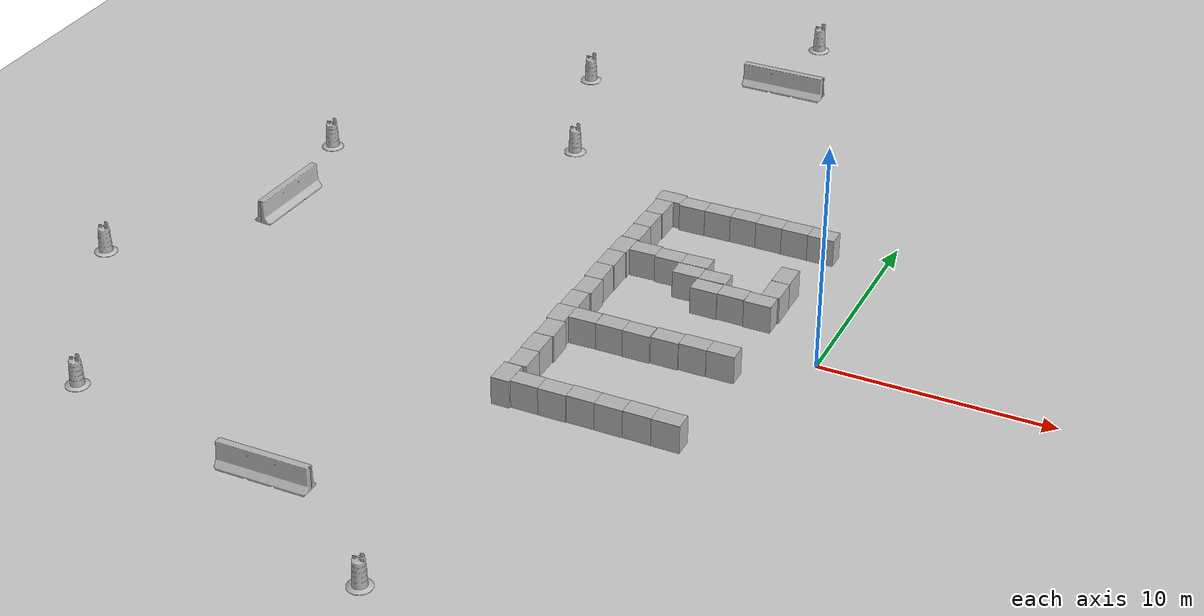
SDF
<sdf version="1.7">
 <world name="default">
  <model name="ground_plane">
   <static>1</static>
   <link name="link">
    <collision name="collision">
     <geometry><plane><normal>0 0 1</normal><size>100 100</size></plane></geometry>
     <surface><friction><ode><mu>100</mu><mu2>50</mu2></ode></friction></surface>
    </collision>
    <visual name="visual">
     <cast_shadows>0</cast_shadows>
     <geometry><plane><normal>0 0 1</normal><size>100 100</size></plane></geometry>
     <material>
      <script><uri>file://media/materials/scripts/gazebo.material</uri><name>Gazebo/Grey</name></script>
     </material>
    </visual>
    <velocity_decay><linear>0</linear><angular>0</angular></velocity_decay>
   </link>
  </model>
  <model name="Construction Barrel_2">
   <link name="link">
    <inertial>
     <pose>0 0 0.4 0 -0 0</pose>
     <mass>500</mass>
     <inertia><ixx>51.2096</ixx><iyy>51.2096</iyy><izz>25</izz><ixy>0</ixy><ixz>0</ixz><iyz>0</iyz></inertia>
    </inertial>
    <collision name="collision">
     <geometry><mesh><uri>model://construction_barrel/meshes/construction_barrel.dae</uri></mesh></geometry>
    </collision>
    <visual name="visual">
     <geometry><mesh><uri>model://construction_barrel/meshes/construction_barrel.dae</uri></mesh></geometry>
    </visual>
    <velocity_decay><linear>0</linear><angular>0</angular></velocity_decay>
   </link>
   <pose>-16.5173 12.0056 0 0 0 -0.002074</pose>
   <static>0</static>
  </model>
  <model name="Construction Barrel_5">
   <link name="link">
    <inertial>
     <pose>0 0 0.4 0 -0 0</pose>
     <mass>500</mass>
     <inertia><ixx>51.2096</ixx><iyy>51.2096</iyy><izz>25</izz><ixy>0</ixy><ixz>0</ixz><iyz>0</iyz></inertia>
    </inertial>
    <collision name="collision">
     <geometry><mesh><uri>model://construction_barrel/meshes/construction_barrel.dae</uri></mesh></geometry>
    </collision>
    <visual name="visual">
     <geometry><mesh><uri>model://construction_barrel/meshes/construction_barrel.dae</uri></mesh></geometry>
    </visual>
    <velocity_decay><linear>0</linear><angular>0</angular></velocity_decay>
   </link>
   <pose>-27.0002 7.54608 0 0 0 -0.001826</pose>
   <static>0</static>
  </model>
  <model name="Construction Barrel_6">
   <link name="link">
    <inertial>
     <pose>0 0 0.4 0 -0 0</pose>
     <mass>500</mass>
     <inertia><ixx>51.2096</ixx><iyy>51.2096</iyy><izz>25</izz><ixy>0</ixy><ixz>0</ixz><iyz>0</iyz></inertia>
    </inertial>
    <collision name="collision">
     <geometry><mesh><uri>model://construction_barrel/meshes/construction_barrel.dae</uri></mesh></geometry>
    </collision>
    <visual name="visual">
     <geometry><mesh><uri>model://construction_barrel/meshes/construction_barrel.dae</uri></mesh></geometry>
    </visual>
    <velocity_decay><linear>0</linear><angular>0</angular></velocity_decay>
   </link>
   <pose>-10.0002 27.0007 0 0 0 -0.00183</pose>
   <static>0</static>
  </model>
  <model name="Construction Barrel_7">
   <link name="link">
    <inertial>
     <pose>0 0 0.4 0 -0 0</pose>
     <mass>500</mass>
     <inertia><ixx>51.2096</ixx><iyy>51.2096</iyy><izz>25</izz><ixy>0</ixy><ixz>0</ixz><iyz>0</iyz></inertia>
    </inertial>
    <collision name="collision">
     <geometry><mesh><uri>model://construction_barrel/meshes/construction_barrel.dae</uri></mesh></geometry>
    </collision>
    <visual name="visual">
     <geometry><mesh><uri>model://construction_barrel/meshes/construction_barrel.dae</uri></mesh></geometry>
    </visual>
    <velocity_decay><linear>0</linear><angular>0</angular></velocity_decay>
   </link>
   <pose>-31.0002 -4.99928 0 0 0 -0.001746</pose>
   <static>0</static>
  </model>
  <model name="Construction Barrel_8">
   <link name="link">
    <inertial>
     <pose>0 0 0.4 0 -0 0</pose>
     <mass>500</mass>
     <inertia><ixx>51.2096</ixx><iyy>51.2096</iyy><izz>25</izz><ixy>0</ixy><ixz>0</ixz><iyz>0</iyz></inertia>
    </inertial>
    <collision name="collision">
     <geometry><mesh><uri>model://construction_barrel/meshes/construction_barrel.dae</uri></mesh></geometry>
    </collision>
    <visual name="visual">
     <geometry><mesh><uri>model://construction_barrel/meshes/construction_barrel.dae</uri></mesh></geometry>
    </visual>
    <velocity_decay><linear>0</linear><angular>0</angular></velocity_decay>
   </link>
   <pose>-9.56833 -19.9993 0 0 0 -0.001691</pose>
   <static>0</static>
  </model>
  <model name="Construction Barrel_9">
   <link name="link">
    <inertial>
     <pose>0 0 0.4 0 -0 0</pose>
     <mass>500</mass>
     <inertia><ixx>51.2096</ixx><iyy>51.2096</iyy><izz>25</izz><ixy>0</ixy><ixz>0</ixz><iyz>0</iyz></inertia>
    </inertial>
    <collision name="collision">
     <geometry><mesh><uri>model://construction_barrel/meshes/construction_barrel.dae</uri></mesh></geometry>
    </collision>
    <visual name="visual">
     <geometry><mesh><uri>model://construction_barrel/meshes/construction_barrel.dae</uri></mesh></geometry>
    </visual>
    <velocity_decay><linear>0</linear><angular>0</angular></velocity_decay>
   </link>
   <pose>-26.0003 -13.9994 0 0 0 -0.001597</pose>
   <static>0</static>
  </model>
  <model name="Construction Barrel_14">
   <link name="link">
    <inertial>
     <pose>0 0 0.4 0 -0 0</pose>
     <mass>500</mass>
     <inertia><ixx>51.2096</ixx><iyy>51.2096</iyy><izz>25</izz><ixy>0</ixy><ixz>0</ixz><iyz>0</iyz></inertia>
    </inertial>
    <collision name="collision">
     <geometry><mesh><uri>model://construction_barrel/meshes/construction_barrel.dae</uri></mesh></geometry>
    </collision>
    <visual name="visual">
     <geometry><mesh><uri>model://construction_barrel/meshes/construction_barrel.dae</uri></mesh></geometry>
    </visual>
    <velocity_decay><linear>0</linear><angular>0</angular></velocity_decay>
   </link>
   <pose>-19.0002 19.0004 -1e-06 0 5e-06 -0.001311</pose>
   <static>0</static>
  </model>
  <model name="jersey_barrier_0">
   <static>1</static>
   <link name="link">
    <visual name="visual">
     <geometry><mesh><uri>model://jersey_barrier/meshes/jersey_barrier.dae</uri></mesh></geometry>
    </visual>
    <collision name="upright">
     <pose>0 0 0.5715 0 -0 0</pose>
     <geometry><box><size>4.06542 0.3063 1.143</size></box></geometry>
    </collision>
    <collision name="base">
     <pose>0 0 0.032258 0 -0 0</pose>
     <geometry><box><size>4.06542 0.8107 0.064516</size></box></geometry>
    </collision>
    <collision name="base2">
     <pose>0 0 0.1 0 -0 0</pose>
     <geometry><box><size>4.06542 0.65 0.1</size></box></geometry>
    </collision>
    <collision name="base3">
     <pose>0 0 0.2 0 -0 0</pose>
     <geometry><box><size>4.06542 0.5 0.1</size></box></geometry>
    </collision>
    <collision name="left-angle">
     <pose>0 -0.224 0.2401 0.9 -0 0</pose>
     <geometry><box><size>4.06542 0.5 0.064516</size></box></geometry>
    </collision>
    <collision name="right-angle">
     <pose>0 0.224 0.2401 -0.9 0 0</pose>
     <geometry><box><size>4.06542 0.5 0.064516</size></box></geometry>
    </collision>
    <velocity_decay><linear>0</linear><angular>0</angular></velocity_decay>
   </link>
   <pose>-10 22 0 0 -0 0</pose>
  </model>
  <model name="jersey_barrier_1">
   <static>1</static>
   <link name="link">
    <visual name="visual">
     <geometry><mesh><uri>model://jersey_barrier/meshes/jersey_barrier.dae</uri></mesh></geometry>
    </visual>
    <collision name="upright">
     <pose>0 0 0.5715 0 -0 0</pose>
     <geometry><box><size>4.06542 0.3063 1.143</size></box></geometry>
    </collision>
    <collision name="base">
     <pose>0 0 0.032258 0 -0 0</pose>
     <geometry><box><size>4.06542 0.8107 0.064516</size></box></geometry>
    </collision>
    <collision name="base2">
     <pose>0 0 0.1 0 -0 0</pose>
     <geometry><box><size>4.06542 0.65 0.1</size></box></geometry>
    </collision>
    <collision name="base3">
     <pose>0 0 0.2 0 -0 0</pose>
     <geometry><box><size>4.06542 0.5 0.1</size></box></geometry>
    </collision>
    <collision name="left-angle">
     <pose>0 -0.224 0.2401 0.9 -0 0</pose>
     <geometry><box><size>4.06542 0.5 0.064516</size></box></geometry>
    </collision>
    <collision name="right-angle">
     <pose>0 0.224 0.2401 -0.9 0 0</pose>
     <geometry><box><size>4.06542 0.5 0.064516</size></box></geometry>
    </collision>
    <velocity_decay><linear>0</linear><angular>0</angular></velocity_decay>
   </link>
   <pose>-26 2 0 0 -0 1.49459</pose>
  </model>
  <model name="jersey_barrier_2">
   <static>1</static>
   <link name="link">
    <visual name="visual">
     <geometry><mesh><uri>model://jersey_barrier/meshes/jersey_barrier.dae</uri></mesh></geometry>
    </visual>
    <collision name="upright">
     <pose>0 0 0.5715 0 -0 0</pose>
     <geometry><box><size>4.06542 0.3063 1.143</size></box></geometry>
    </collision>
    <collision name="base">
     <pose>0 0 0.032258 0 -0 0</pose>
     <geometry><box><size>4.06542 0.8107 0.064516</size></box></geometry>
    </collision>
    <collision name="base2">
     <pose>0 0 0.1 0 -0 0</pose>
     <geometry><box><size>4.06542 0.65 0.1</size></box></geometry>
    </collision>
    <collision name="base3">
     <pose>0 0 0.2 0 -0 0</pose>
     <geometry><box><size>4.06542 0.5 0.1</size></box></geometry>
    </collision>
    <collision name="left-angle">
     <pose>0 -0.224 0.2401 0.9 -0 0</pose>
     <geometry><box><size>4.06542 0.5 0.064516</size></box></geometry>
    </collision>
    <collision name="right-angle">
     <pose>0 0.224 0.2401 -0.9 0 0</pose>
     <geometry><box><size>4.06542 0.5 0.064516</size></box></geometry>
    </collision>
    <velocity_decay><linear>0</linear><angular>0</angular></velocity_decay>
   </link>
   <pose>-16 -16 0 0 -0 0</pose>
  </model>
  <model name="Big box 4_clone_6">
   <pose>-3.19129 -7.44955 0.624831 1e-06 -0.000282 -0.000412</pose>
   <static>0</static>
   <link name="link">
    <inertial>
     <mass>40</mass>
     <inertia><ixx>1</ixx><ixy>0</ixy><ixz>0</ixz><iyy>1</iyy><iyz>0</iyz><izz>1</izz></inertia>
    </inertial>
    <collision name="collision">
     <geometry><box><size>1.2 0.8 1.25</size></box></geometry>
     <surface><contact><ode><max_vel>0.1</max_vel><min_depth>0.001</min_depth></ode></contact></surface>
    </collision>
    <visual name="visual">
     <geometry><mesh><uri>model://big_box4/meshes/big_box.dae</uri></mesh></geometry>
    </visual>
   </link>
  </model>
  <model name="Big box 4_clone_6_clone_7">
   <pose>-2.69374 7.94531 0.624498 0 -0.000816 0.005275</pose>
   <static>0</static>
   <link name="link">
    <inertial>
     <mass>40</mass>
     <inertia><ixx>1</ixx><ixy>0</ixy><ixz>0</ixz><iyy>1</iyy><iyz>0</iyz><izz>1</izz></inertia>
    </inertial>
    <collision name="collision">
     <geometry><box><size>1.2 0.8 1.25</size></box></geometry>
     <surface><contact><ode><max_vel>0.1</max_vel><min_depth>0.001</min_depth></ode></contact></surface>
    </collision>
    <visual name="visual">
     <geometry><mesh><uri>model://big_box4/meshes/big_box.dae</uri></mesh></geometry>
    </visual>
   </link>
  </model>
  <model name="Big box 4_clone_6_clone_8">
   <pose>-3.8941 7.95521 0.624495 0 -0.000826 0.00534</pose>
   <static>0</static>
   <link name="link">
    <inertial>
     <mass>40</mass>
     <inertia><ixx>1</ixx><ixy>0</ixy><ixz>0</ixz><iyy>1</iyy><iyz>0</iyz><izz>1</izz></inertia>
    </inertial>
    <collision name="collision">
     <geometry><box><size>1.2 0.8 1.25</size></box></geometry>
     <surface><contact><ode><max_vel>0.1</max_vel><min_depth>0.001</min_depth></ode></contact></surface>
    </collision>
    <visual name="visual">
     <geometry><mesh><uri>model://big_box4/meshes/big_box.dae</uri></mesh></geometry>
    </visual>
   </link>
  </model>
  <model name="Big box 4_clone_6_clone_9">
   <pose>-5.0968 7.97062 0.624666 -0.000863 0.000533 0.006318</pose>
   <static>0</static>
   <link name="link">
    <inertial>
     <mass>40</mass>
     <inertia><ixx>1</ixx><ixy>0</ixy><ixz>0</ixz><iyy>1</iyy><iyz>0</iyz><izz>1</izz></inertia>
    </inertial>
    <collision name="collision">
     <geometry><box><size>1.2 0.8 1.25</size></box></geometry>
     <surface><contact><ode><max_vel>0.1</max_vel><min_depth>0.001</min_depth></ode></contact></surface>
    </collision>
    <visual name="visual">
     <geometry><mesh><uri>model://big_box4/meshes/big_box.dae</uri></mesh></geometry>
    </visual>
   </link>
  </model>
  <model name="Big box 4_clone_6_clone_10">
   <pose>-6.29744 7.98062 0.624496 0 0.000825 0.005365</pose>
   <static>0</static>
   <link name="link">
    <inertial>
     <mass>40</mass>
     <inertia><ixx>1</ixx><ixy>0</ixy><ixz>0</ixz><iyy>1</iyy><iyz>0</iyz><izz>1</izz></inertia>
    </inertial>
    <collision name="collision">
     <geometry><box><size>1.2 0.8 1.25</size></box></geometry>
     <surface><contact><ode><max_vel>0.1</max_vel><min_depth>0.001</min_depth></ode></contact></surface>
    </collision>
    <visual name="visual">
     <geometry><mesh><uri>model://big_box4/meshes/big_box.dae</uri></mesh></geometry>
    </visual>
   </link>
  </model>
  <model name="Big box 4_clone_6_clone_11">
   <pose>-7.49747 7.96666 0.624499 0 0.000832 0.005139</pose>
   <static>0</static>
   <link name="link">
    <inertial>
     <mass>40</mass>
     <inertia><ixx>1</ixx><ixy>0</ixy><ixz>0</ixz><iyy>1</iyy><iyz>0</iyz><izz>1</izz></inertia>
    </inertial>
    <collision name="collision">
     <geometry><box><size>1.2 0.8 1.25</size></box></geometry>
     <surface><contact><ode><max_vel>0.1</max_vel><min_depth>0.001</min_depth></ode></contact></surface>
    </collision>
    <visual name="visual">
     <geometry><mesh><uri>model://big_box4/meshes/big_box.dae</uri></mesh></geometry>
    </visual>
   </link>
  </model>
  <model name="Big box 4_clone_6_clone_12">
   <pose>-8.69729 7.94524 0.624719 0 0.000458 0.004791</pose>
   <static>0</static>
   <link name="link">
    <inertial>
     <mass>40</mass>
     <inertia><ixx>1</ixx><ixy>0</ixy><ixz>0</ixz><iyy>1</iyy><iyz>0</iyz><izz>1</izz></inertia>
    </inertial>
    <collision name="collision">
     <geometry><box><size>1.2 0.8 1.25</size></box></geometry>
     <surface><contact><ode><max_vel>0.1</max_vel><min_depth>0.001</min_depth></ode></contact></surface>
    </collision>
    <visual name="visual">
     <geometry><mesh><uri>model://big_box4/meshes/big_box.dae</uri></mesh></geometry>
    </visual>
   </link>
  </model>
  <model name="Big box 4_clone_6_clone_13">
   <pose>-4.39074 -7.43781 0.624893 0 -0.000178 -0.00045</pose>
   <static>0</static>
   <link name="link">
    <inertial>
     <mass>40</mass>
     <inertia><ixx>1</ixx><ixy>0</ixy><ixz>0</ixz><iyy>1</iyy><iyz>0</iyz><izz>1</izz></inertia>
    </inertial>
    <collision name="collision">
     <geometry><box><size>1.2 0.8 1.25</size></box></geometry>
     <surface><contact><ode><max_vel>0.1</max_vel><min_depth>0.001</min_depth></ode></contact></surface>
    </collision>
    <visual name="visual">
     <geometry><mesh><uri>model://big_box4/meshes/big_box.dae</uri></mesh></geometry>
    </visual>
   </link>
  </model>
  <model name="Big box 4_clone_6_clone_14">
   <pose>-5.5906 -7.4519 0.624736 0 -0.000438 -0.000852</pose>
   <static>0</static>
   <link name="link">
    <inertial>
     <mass>40</mass>
     <inertia><ixx>1</ixx><ixy>0</ixy><ixz>0</ixz><iyy>1</iyy><iyz>0</iyz><izz>1</izz></inertia>
    </inertial>
    <collision name="collision">
     <geometry><box><size>1.2 0.8 1.25</size></box></geometry>
     <surface><contact><ode><max_vel>0.1</max_vel><min_depth>0.001</min_depth></ode></contact></surface>
    </collision>
    <visual name="visual">
     <geometry><mesh><uri>model://big_box4/meshes/big_box.dae</uri></mesh></geometry>
    </visual>
   </link>
  </model>
  <model name="Big box 4_clone_6_clone_15">
   <pose>-6.79042 -7.44377 0.624526 0 -0.000788 -0.001042</pose>
   <static>0</static>
   <link name="link">
    <inertial>
     <mass>40</mass>
     <inertia><ixx>1</ixx><ixy>0</ixy><ixz>0</ixz><iyy>1</iyy><iyz>0</iyz><izz>1</izz></inertia>
    </inertial>
    <collision name="collision">
     <geometry><box><size>1.2 0.8 1.25</size></box></geometry>
     <surface><contact><ode><max_vel>0.1</max_vel><min_depth>0.001</min_depth></ode></contact></surface>
    </collision>
    <visual name="visual">
     <geometry><mesh><uri>model://big_box4/meshes/big_box.dae</uri></mesh></geometry>
    </visual>
   </link>
  </model>
  <model name="Big box 4_clone_6_clone_16">
   <pose>-7.99011 -7.48266 0.62452 0 -0.000797 -0.000159</pose>
   <static>0</static>
   <link name="link">
    <inertial>
     <mass>40</mass>
     <inertia><ixx>1</ixx><ixy>0</ixy><ixz>0</ixz><iyy>1</iyy><iyz>0</iyz><izz>1</izz></inertia>
    </inertial>
    <collision name="collision">
     <geometry><box><size>1.2 0.8 1.25</size></box></geometry>
     <surface><contact><ode><max_vel>0.1</max_vel><min_depth>0.001</min_depth></ode></contact></surface>
    </collision>
    <visual name="visual">
     <geometry><mesh><uri>model://big_box4/meshes/big_box.dae</uri></mesh></geometry>
    </visual>
   </link>
  </model>
  <model name="Big box 4_clone_6_clone_17">
   <pose>-9.18956 -7.47843 0.624706 0 -0.000491 -5.8e-05</pose>
   <static>0</static>
   <link name="link">
    <inertial>
     <mass>40</mass>
     <inertia><ixx>1</ixx><ixy>0</ixy><ixz>0</ixz><iyy>1</iyy><iyz>0</iyz><izz>1</izz></inertia>
    </inertial>
    <collision name="collision">
     <geometry><box><size>1.2 0.8 1.25</size></box></geometry>
     <surface><contact><ode><max_vel>0.1</max_vel><min_depth>0.001</min_depth></ode></contact></surface>
    </collision>
    <visual name="visual">
     <geometry><mesh><uri>model://big_box4/meshes/big_box.dae</uri></mesh></geometry>
    </visual>
   </link>
  </model>
  <model name="Big box 4_clone_6_clone_18">
   <pose>-9.89849 8.06562 0.624685 -0.000786 -1e-06 0.002727</pose>
   <static>0</static>
   <link name="link">
    <inertial>
     <mass>40</mass>
     <inertia><ixx>1</ixx><ixy>0</ixy><ixz>0</ixz><iyy>1</iyy><iyz>0</iyz><izz>1</izz></inertia>
    </inertial>
    <collision name="collision">
     <geometry><box><size>1.2 0.8 1.25</size></box></geometry>
     <surface><contact><ode><max_vel>0.1</max_vel><min_depth>0.001</min_depth></ode></contact></surface>
    </collision>
    <visual name="visual">
     <geometry><mesh><uri>model://big_box4/meshes/big_box.dae</uri></mesh></geometry>
    </visual>
   </link>
  </model>
  <model name="Big box 4_clone_4_clone_clone_clone_9_clone">
   <pose>-10.0322 7.06551 0.624978 0 -9e-06 1.57293</pose>
   <static>0</static>
   <link name="link">
    <inertial>
     <mass>40</mass>
     <inertia><ixx>1</ixx><ixy>0</ixy><ixz>0</ixz><iyy>1</iyy><iyz>0</iyz><izz>1</izz></inertia>
    </inertial>
    <collision name="collision">
     <geometry><box><size>1.2 0.8 1.25</size></box></geometry>
     <surface><contact><ode><max_vel>0.1</max_vel><min_depth>0.001</min_depth></ode></contact></surface>
    </collision>
    <visual name="visual">
     <geometry><mesh><uri>model://big_box4/meshes/big_box.dae</uri></mesh></geometry>
    </visual>
   </link>
  </model>
  <model name="Big box 4_clone_4_clone_clone_clone_9_clone_0">
   <pose>-10.0622 5.86331 0.624939 0 -1e-05 1.56658</pose>
   <static>0</static>
   <link name="link">
    <inertial>
     <mass>40</mass>
     <inertia><ixx>1</ixx><ixy>0</ixy><ixz>0</ixz><iyy>1</iyy><iyz>0</iyz><izz>1</izz></inertia>
    </inertial>
    <collision name="collision">
     <geometry><box><size>1.2 0.8 1.25</size></box></geometry>
     <surface><contact><ode><max_vel>0.1</max_vel><min_depth>0.001</min_depth></ode></contact></surface>
    </collision>
    <visual name="visual">
     <geometry><mesh><uri>model://big_box4/meshes/big_box.dae</uri></mesh></geometry>
    </visual>
   </link>
  </model>
  <model name="Big box 4_clone_4_clone_clone_clone_9_clone_1">
   <pose>-10.0526 4.66321 0.624922 0 0.000129 1.56648</pose>
   <static>0</static>
   <link name="link">
    <inertial>
     <mass>40</mass>
     <inertia><ixx>1</ixx><ixy>0</ixy><ixz>0</ixz><iyy>1</iyy><iyz>0</iyz><izz>1</izz></inertia>
    </inertial>
    <collision name="collision">
     <geometry><box><size>1.2 0.8 1.25</size></box></geometry>
     <surface><contact><ode><max_vel>0.1</max_vel><min_depth>0.001</min_depth></ode></contact></surface>
    </collision>
    <visual name="visual">
     <geometry><mesh><uri>model://big_box4/meshes/big_box.dae</uri></mesh></geometry>
    </visual>
   </link>
  </model>
  <model name="Big box 4_clone_4_clone_clone_clone_9_clone_2">
   <pose>-10.1201 3.45612 0.624921 -0.000301 0.000331 1.58621</pose>
   <static>0</static>
   <link name="link">
    <inertial>
     <mass>40</mass>
     <inertia><ixx>1</ixx><ixy>0</ixy><ixz>0</ixz><iyy>1</iyy><iyz>0</iyz><izz>1</izz></inertia>
    </inertial>
    <collision name="collision">
     <geometry><box><size>1.2 0.8 1.25</size></box></geometry>
     <surface><contact><ode><max_vel>0.1</max_vel><min_depth>0.001</min_depth></ode></contact></surface>
    </collision>
    <visual name="visual">
     <geometry><mesh><uri>model://big_box4/meshes/big_box.dae</uri></mesh></geometry>
    </visual>
   </link>
  </model>
  <model name="Big box 4_clone_4_clone_clone_clone_9_clone_3">
   <pose>-10.143 2.2557 0.624921 0 0.000132 1.58563</pose>
   <static>0</static>
   <link name="link">
    <inertial>
     <mass>40</mass>
     <inertia><ixx>1</ixx><ixy>0</ixy><ixz>0</ixz><iyy>1</iyy><iyz>0</iyz><izz>1</izz></inertia>
    </inertial>
    <collision name="collision">
     <geometry><box><size>1.2 0.8 1.25</size></box></geometry>
     <surface><contact><ode><max_vel>0.1</max_vel><min_depth>0.001</min_depth></ode></contact></surface>
    </collision>
    <visual name="visual">
     <geometry><mesh><uri>model://big_box4/meshes/big_box.dae</uri></mesh></geometry>
    </visual>
   </link>
  </model>
  <model name="Big box 4_clone_4_clone_clone_clone_9_clone_4">
   <pose>-10.1474 1.05494 0.624837 1e-06 0.00027 1.58242</pose>
   <static>0</static>
   <link name="link">
    <inertial>
     <mass>40</mass>
     <inertia><ixx>1</ixx><ixy>0</ixy><ixz>0</ixz><iyy>1</iyy><iyz>0</iyz><izz>1</izz></inertia>
    </inertial>
    <collision name="collision">
     <geometry><box><size>1.2 0.8 1.25</size></box></geometry>
     <surface><contact><ode><max_vel>0.1</max_vel><min_depth>0.001</min_depth></ode></contact></surface>
    </collision>
    <visual name="visual">
     <geometry><mesh><uri>model://big_box4/meshes/big_box.dae</uri></mesh></geometry>
    </visual>
   </link>
  </model>
  <model name="Big box 4_clone_4_clone_clone_clone_9_clone_5">
   <pose>-10.0745 -0.144377 0.624824 0 0.000293 1.58305</pose>
   <static>0</static>
   <link name="link">
    <inertial>
     <mass>40</mass>
     <inertia><ixx>1</ixx><ixy>0</ixy><ixz>0</ixz><iyy>1</iyy><iyz>0</iyz><izz>1</izz></inertia>
    </inertial>
    <collision name="collision">
     <geometry><box><size>1.2 0.8 1.25</size></box></geometry>
     <surface><contact><ode><max_vel>0.1</max_vel><min_depth>0.001</min_depth></ode></contact></surface>
    </collision>
    <visual name="visual">
     <geometry><mesh><uri>model://big_box4/meshes/big_box.dae</uri></mesh></geometry>
    </visual>
   </link>
  </model>
  <model name="Big box 4_clone_4_clone_clone_clone_9_clone_6">
   <pose>-10.1229 -1.34893 0.624815 -1e-06 0.000297 1.59333</pose>
   <static>0</static>
   <link name="link">
    <inertial>
     <mass>40</mass>
     <inertia><ixx>1</ixx><ixy>0</ixy><ixz>0</ixz><iyy>1</iyy><iyz>0</iyz><izz>1</izz></inertia>
    </inertial>
    <collision name="collision">
     <geometry><box><size>1.2 0.8 1.25</size></box></geometry>
     <surface><contact><ode><max_vel>0.1</max_vel><min_depth>0.001</min_depth></ode></contact></surface>
    </collision>
    <visual name="visual">
     <geometry><mesh><uri>model://big_box4/meshes/big_box.dae</uri></mesh></geometry>
    </visual>
   </link>
  </model>
  <model name="Big box 4_clone_4_clone_clone_clone_9_clone_7">
   <pose>-10.155 -2.55149 0.624743 -2e-06 -0.000418 1.59764</pose>
   <static>0</static>
   <link name="link">
    <inertial>
     <mass>40</mass>
     <inertia><ixx>1</ixx><ixy>0</ixy><ixz>0</ixz><iyy>1</iyy><iyz>0</iyz><izz>1</izz></inertia>
    </inertial>
    <collision name="collision">
     <geometry><box><size>1.2 0.8 1.25</size></box></geometry>
     <surface><contact><ode><max_vel>0.1</max_vel><min_depth>0.001</min_depth></ode></contact></surface>
    </collision>
    <visual name="visual">
     <geometry><mesh><uri>model://big_box4/meshes/big_box.dae</uri></mesh></geometry>
    </visual>
   </link>
  </model>
  <model name="Big box 4_clone_4_clone_clone_clone_9_clone_8">
   <pose>-10.052 -3.74931 0.624498 -0 -0.00083 1.59889</pose>
   <static>0</static>
   <link name="link">
    <inertial>
     <mass>40</mass>
     <inertia><ixx>1</ixx><ixy>0</ixy><ixz>0</ixz><iyy>1</iyy><iyz>0</iyz><izz>1</izz></inertia>
    </inertial>
    <collision name="collision">
     <geometry><box><size>1.2 0.8 1.25</size></box></geometry>
     <surface><contact><ode><max_vel>0.1</max_vel><min_depth>0.001</min_depth></ode></contact></surface>
    </collision>
    <visual name="visual">
     <geometry><mesh><uri>model://big_box4/meshes/big_box.dae</uri></mesh></geometry>
    </visual>
   </link>
  </model>
  <model name="Big box 4_clone_4_clone_clone_clone_9_clone_9">
   <pose>-10.0891 -4.95731 0.624954 0 -7.6e-05 1.57937</pose>
   <static>0</static>
   <link name="link">
    <inertial>
     <mass>40</mass>
     <inertia><ixx>1</ixx><ixy>0</ixy><ixz>0</ixz><iyy>1</iyy><iyz>0</iyz><izz>1</izz></inertia>
    </inertial>
    <collision name="collision">
     <geometry><box><size>1.2 0.8 1.25</size></box></geometry>
     <surface><contact><ode><max_vel>0.1</max_vel><min_depth>0.001</min_depth></ode></contact></surface>
    </collision>
    <visual name="visual">
     <geometry><mesh><uri>model://big_box4/meshes/big_box.dae</uri></mesh></geometry>
    </visual>
   </link>
  </model>
  <model name="Big box 4_clone_4_clone_clone_clone_9_clone_10">
   <pose>-10.0534 -6.15656 0.624498 0 -0.00083 1.57937</pose>
   <static>0</static>
   <link name="link">
    <inertial>
     <mass>40</mass>
     <inertia><ixx>1</ixx><ixy>0</ixy><ixz>0</ixz><iyy>1</iyy><iyz>0</iyz><izz>1</izz></inertia>
    </inertial>
    <collision name="collision">
     <geometry><box><size>1.2 0.8 1.25</size></box></geometry>
     <surface><contact><ode><max_vel>0.1</max_vel><min_depth>0.001</min_depth></ode></contact></surface>
    </collision>
    <visual name="visual">
     <geometry><mesh><uri>model://big_box4/meshes/big_box.dae</uri></mesh></geometry>
    </visual>
   </link>
  </model>
  <model name="Big box 4_clone_4_clone_clone_clone_9_clone_11">
   <pose>-10.1921 -7.3742 0.624499 -0.001245 -3e-06 1.56367</pose>
   <static>0</static>
   <link name="link">
    <inertial>
     <mass>40</mass>
     <inertia><ixx>1</ixx><ixy>0</ixy><ixz>0</ixz><iyy>1</iyy><iyz>0</iyz><izz>1</izz></inertia>
    </inertial>
    <collision name="collision">
     <geometry><box><size>1.2 0.8 1.25</size></box></geometry>
     <surface><contact><ode><max_vel>0.1</max_vel><min_depth>0.001</min_depth></ode></contact></surface>
    </collision>
    <visual name="visual">
     <geometry><mesh><uri>model://big_box4/meshes/big_box.dae</uri></mesh></geometry>
    </visual>
   </link>
  </model>
  <model name="Big box 4_clone_2_clone_5">
   <pose>-9.16068 -2.32522 0.624746 0.000991 0.000239 0.026388</pose>
   <static>0</static>
   <link name="link">
    <inertial>
     <mass>40</mass>
     <inertia><ixx>1</ixx><ixy>0</ixy><ixz>0</ixz><iyy>1</iyy><iyz>0</iyz><izz>1</izz></inertia>
    </inertial>
    <collision name="collision">
     <geometry><box><size>1.2 0.8 1.25</size></box></geometry>
     <surface><contact><ode><max_vel>0.1</max_vel><min_depth>0.001</min_depth></ode></contact></surface>
    </collision>
    <visual name="visual">
     <geometry><mesh><uri>model://big_box4/meshes/big_box.dae</uri></mesh></geometry>
    </visual>
   </link>
  </model>
  <model name="Big box 4_clone_2_clone_6">
   <pose>-7.95326 -2.3079 0.624873 0 0.00021 0.007426</pose>
   <static>0</static>
   <link name="link">
    <inertial>
     <mass>40</mass>
     <inertia><ixx>1</ixx><ixy>0</ixy><ixz>0</ixz><iyy>1</iyy><iyz>0</iyz><izz>1</izz></inertia>
    </inertial>
    <collision name="collision">
     <geometry><box><size>1.2 0.8 1.25</size></box></geometry>
     <surface><contact><ode><max_vel>0.1</max_vel><min_depth>0.001</min_depth></ode></contact></surface>
    </collision>
    <visual name="visual">
     <geometry><mesh><uri>model://big_box4/meshes/big_box.dae</uri></mesh></geometry>
    </visual>
   </link>
  </model>
  <model name="Big box 4_clone_2_clone_7">
   <pose>-6.75278 -2.31576 0.624499 0 0.000833 0.006809</pose>
   <static>0</static>
   <link name="link">
    <inertial>
     <mass>40</mass>
     <inertia><ixx>1</ixx><ixy>0</ixy><ixz>0</ixz><iyy>1</iyy><iyz>0</iyz><izz>1</izz></inertia>
    </inertial>
    <collision name="collision">
     <geometry><box><size>1.2 0.8 1.25</size></box></geometry>
     <surface><contact><ode><max_vel>0.1</max_vel><min_depth>0.001</min_depth></ode></contact></surface>
    </collision>
    <visual name="visual">
     <geometry><mesh><uri>model://big_box4/meshes/big_box.dae</uri></mesh></geometry>
    </visual>
   </link>
  </model>
  <model name="Big box 4_clone_2_clone_8">
   <pose>-5.52602 -2.26257 0.624499 0 -0.000833 0.001076</pose>
   <static>0</static>
   <link name="link">
    <inertial>
     <mass>40</mass>
     <inertia><ixx>1</ixx><ixy>0</ixy><ixz>0</ixz><iyy>1</iyy><iyz>0</iyz><izz>1</izz></inertia>
    </inertial>
    <collision name="collision">
     <geometry><box><size>1.2 0.8 1.25</size></box></geometry>
     <surface><contact><ode><max_vel>0.1</max_vel><min_depth>0.001</min_depth></ode></contact></surface>
    </collision>
    <visual name="visual">
     <geometry><mesh><uri>model://big_box4/meshes/big_box.dae</uri></mesh></geometry>
    </visual>
   </link>
  </model>
  <model name="Big box 4_clone_2_clone_9">
   <pose>-4.32615 -2.20804 0.624606 -2e-06 0.000655 0.001076</pose>
   <static>0</static>
   <link name="link">
    <inertial>
     <mass>40</mass>
     <inertia><ixx>1</ixx><ixy>0</ixy><ixz>0</ixz><iyy>1</iyy><iyz>0</iyz><izz>1</izz></inertia>
    </inertial>
    <collision name="collision">
     <geometry><box><size>1.2 0.8 1.25</size></box></geometry>
     <surface><contact><ode><max_vel>0.1</max_vel><min_depth>0.001</min_depth></ode></contact></surface>
    </collision>
    <visual name="visual">
     <geometry><mesh><uri>model://big_box4/meshes/big_box.dae</uri></mesh></geometry>
    </visual>
   </link>
  </model>
  <model name="Big box 4_clone_2_clone_10">
   <pose>-3.12575 -2.19161 0.624366 9e-06 -0.000604 0.001047</pose>
   <static>0</static>
   <link name="link">
    <inertial>
     <mass>40</mass>
     <inertia><ixx>1</ixx><ixy>0</ixy><ixz>0</ixz><iyy>1</iyy><iyz>0</iyz><izz>1</izz></inertia>
    </inertial>
    <collision name="collision">
     <geometry><box><size>1.2 0.8 1.25</size></box></geometry>
     <surface><contact><ode><max_vel>0.1</max_vel><min_depth>0.001</min_depth></ode></contact></surface>
    </collision>
    <visual name="visual">
     <geometry><mesh><uri>model://big_box4/meshes/big_box.dae</uri></mesh></geometry>
    </visual>
   </link>
  </model>
  <model name="Big box 4_clone_2_clone_clone_4">
   <pose>-9.11954 3.57533 0.624973 0 -4.5e-05 0.021512</pose>
   <static>0</static>
   <link name="link">
    <inertial>
     <mass>40</mass>
     <inertia><ixx>1</ixx><ixy>0</ixy><ixz>0</ixz><iyy>1</iyy><iyz>0</iyz><izz>1</izz></inertia>
    </inertial>
    <collision name="collision">
     <geometry><box><size>1.2 0.8 1.25</size></box></geometry>
     <surface><contact><ode><max_vel>0.1</max_vel><min_depth>0.001</min_depth></ode></contact></surface>
    </collision>
    <visual name="visual">
     <geometry><mesh><uri>model://big_box4/meshes/big_box.dae</uri></mesh></geometry>
    </visual>
   </link>
  </model>
  <model name="Big box 4_clone_2_clone_clone_5">
   <pose>-7.91836 3.52187 0.624789 0 0.000347 0.021518</pose>
   <static>0</static>
   <link name="link">
    <inertial>
     <mass>40</mass>
     <inertia><ixx>1</ixx><ixy>0</ixy><ixz>0</ixz><iyy>1</iyy><iyz>0</iyz><izz>1</izz></inertia>
    </inertial>
    <collision name="collision">
     <geometry><box><size>1.2 0.8 1.25</size></box></geometry>
     <surface><contact><ode><max_vel>0.1</max_vel><min_depth>0.001</min_depth></ode></contact></surface>
    </collision>
    <visual name="visual">
     <geometry><mesh><uri>model://big_box4/meshes/big_box.dae</uri></mesh></geometry>
    </visual>
   </link>
  </model>
  <model name="Big box 4_clone_2_clone_10_clone">
   <pose>-6.71779 3.5432 0.624776 0.000553 3e-06 0.020891</pose>
   <static>0</static>
   <link name="link">
    <inertial>
     <mass>40</mass>
     <inertia><ixx>1</ixx><ixy>0</ixy><ixz>0</ixz><iyy>1</iyy><iyz>0</iyz><izz>1</izz></inertia>
    </inertial>
    <collision name="collision">
     <geometry><box><size>1.2 0.8 1.25</size></box></geometry>
     <surface><contact><ode><max_vel>0.1</max_vel><min_depth>0.001</min_depth></ode></contact></surface>
    </collision>
    <visual name="visual">
     <geometry><mesh><uri>model://big_box4/meshes/big_box.dae</uri></mesh></geometry>
    </visual>
   </link>
  </model>
  <model name="Big box 4_clone_2_clone_10_clone_0">
   <pose>-6.75628 2.72268 0.624809 0.000477 -0 0.012767</pose>
   <static>0</static>
   <link name="link">
    <inertial>
     <mass>40</mass>
     <inertia><ixx>1</ixx><ixy>0</ixy><ixz>0</ixz><iyy>1</iyy><iyz>0</iyz><izz>1</izz></inertia>
    </inertial>
    <collision name="collision">
     <geometry><box><size>1.2 0.8 1.25</size></box></geometry>
     <surface><contact><ode><max_vel>0.1</max_vel><min_depth>0.001</min_depth></ode></contact></surface>
    </collision>
    <visual name="visual">
     <geometry><mesh><uri>model://big_box4/meshes/big_box.dae</uri></mesh></geometry>
    </visual>
   </link>
  </model>
  <model name="Big box 4_clone_2_clone_10_clone_1">
   <pose>-5.54945 2.71362 0.624875 0 0.000198 0.028651</pose>
   <static>0</static>
   <link name="link">
    <inertial>
     <mass>40</mass>
     <inertia><ixx>1</ixx><ixy>0</ixy><ixz>0</ixz><iyy>1</iyy><iyz>0</iyz><izz>1</izz></inertia>
    </inertial>
    <collision name="collision">
     <geometry><box><size>1.2 0.8 1.25</size></box></geometry>
     <surface><contact><ode><max_vel>0.1</max_vel><min_depth>0.001</min_depth></ode></contact></surface>
    </collision>
    <visual name="visual">
     <geometry><mesh><uri>model://big_box4/meshes/big_box.dae</uri></mesh></geometry>
    </visual>
   </link>
  </model>
  <model name="Big box 4_clone_2_clone_10_clone_2">
   <pose>-5.58691 1.88287 0.624924 0 -0.000112 -0.003582</pose>
   <static>0</static>
   <link name="link">
    <inertial>
     <mass>40</mass>
     <inertia><ixx>1</ixx><ixy>0</ixy><ixz>0</ixz><iyy>1</iyy><iyz>0</iyz><izz>1</izz></inertia>
    </inertial>
    <collision name="collision">
     <geometry><box><size>1.2 0.8 1.25</size></box></geometry>
     <surface><contact><ode><max_vel>0.1</max_vel><min_depth>0.001</min_depth></ode></contact></surface>
    </collision>
    <visual name="visual">
     <geometry><mesh><uri>model://big_box4/meshes/big_box.dae</uri></mesh></geometry>
    </visual>
   </link>
  </model>
  <model name="Big box 4_clone_2_clone_10_clone_3">
   <pose>-4.3868 1.91607 0.624988 -2.2e-05 -4e-06 -0.003398</pose>
   <static>0</static>
   <link name="link">
    <inertial>
     <mass>40</mass>
     <inertia><ixx>1</ixx><ixy>0</ixy><ixz>0</ixz><iyy>1</iyy><iyz>0</iyz><izz>1</izz></inertia>
    </inertial>
    <collision name="collision">
     <geometry><box><size>1.2 0.8 1.25</size></box></geometry>
     <surface><contact><ode><max_vel>0.1</max_vel><min_depth>0.001</min_depth></ode></contact></surface>
    </collision>
    <visual name="visual">
     <geometry><mesh><uri>model://big_box4/meshes/big_box.dae</uri></mesh></geometry>
    </visual>
   </link>
  </model>
  <model name="Big box 4_clone_2_clone_10_clone_4">
   <pose>-3.18122 1.864 0.624792 0 -0.000338 0.009853</pose>
   <static>0</static>
   <link name="link">
    <inertial>
     <mass>40</mass>
     <inertia><ixx>1</ixx><ixy>0</ixy><ixz>0</ixz><iyy>1</iyy><iyz>0</iyz><izz>1</izz></inertia>
    </inertial>
    <collision name="collision">
     <geometry><box><size>1.2 0.8 1.25</size></box></geometry>
     <surface><contact><ode><max_vel>0.1</max_vel><min_depth>0.001</min_depth></ode></contact></surface>
    </collision>
    <visual name="visual">
     <geometry><mesh><uri>model://big_box4/meshes/big_box.dae</uri></mesh></geometry>
    </visual>
   </link>
  </model>
  <model name="Big box 4_clone_4_clone_clone_clone_0_clone">
   <pose>-2.92609 2.86823 0.624944 -0.000131 -3e-06 1.58414</pose>
   <static>0</static>
   <link name="link">
    <inertial>
     <mass>40</mass>
     <inertia><ixx>1</ixx><ixy>0</ixy><ixz>0</ixz><iyy>1</iyy><iyz>0</iyz><izz>1</izz></inertia>
    </inertial>
    <collision name="collision">
     <geometry><box><size>1.2 0.8 1.25</size></box></geometry>
     <surface><contact><ode><max_vel>0.1</max_vel><min_depth>0.001</min_depth></ode></contact></surface>
    </collision>
    <visual name="visual">
     <geometry><mesh><uri>model://big_box4/meshes/big_box.dae</uri></mesh></geometry>
    </visual>
   </link>
  </model>
  <model name="Big box 4_clone_4_clone_clone_clone_0_clone_0">
   <pose>-2.94397 4.075 0.624867 -0 0.000219 1.57437</pose>
   <static>0</static>
   <link name="link">
    <inertial>
     <mass>40</mass>
     <inertia><ixx>1</ixx><ixy>0</ixy><ixz>0</ixz><iyy>1</iyy><iyz>0</iyz><izz>1</izz></inertia>
    </inertial>
    <collision name="collision">
     <geometry><box><size>1.2 0.8 1.25</size></box></geometry>
     <surface><contact><ode><max_vel>0.1</max_vel><min_depth>0.001</min_depth></ode></contact></surface>
    </collision>
    <visual name="visual">
     <geometry><mesh><uri>model://big_box4/meshes/big_box.dae</uri></mesh></geometry>
    </visual>
   </link>
  </model>
 </world>
</sdf>
